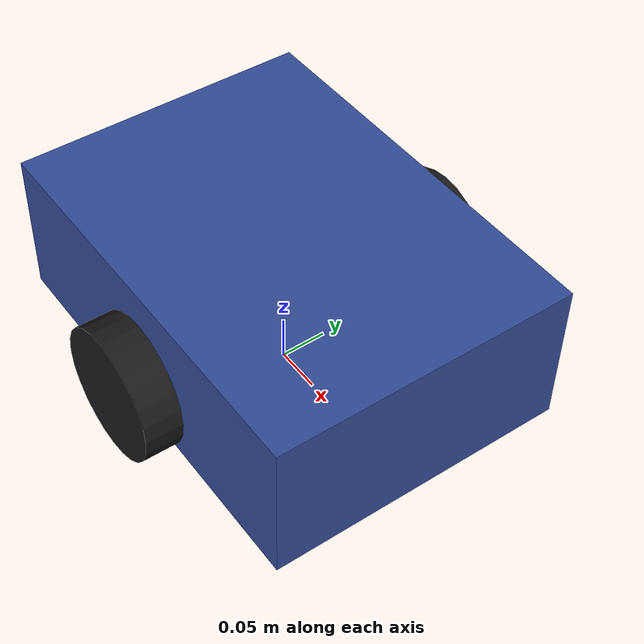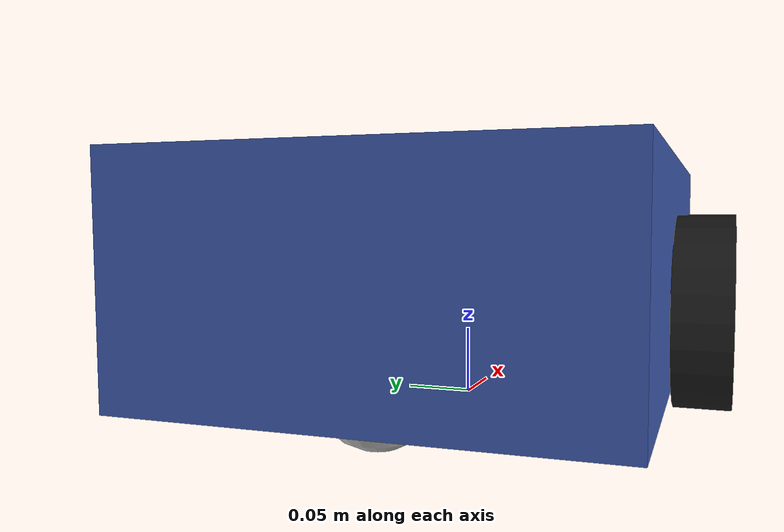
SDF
<?xml version="1.0" ?>
<!--
  Differential drive, odometry, TF, and a planar lidar: the four things Nav2
  needs and nothing else.
-->
<sdf version="1.10">
  <model name="kern_bot">
    <pose>0 0 0.1 0 0 0</pose>

    <link name="base_link">
      <inertial>
        <mass>8.0</mass>
        <inertia><ixx>0.12</ixx><iyy>0.12</iyy><izz>0.2</izz><ixy>0</ixy><ixz>0</ixz><iyz>0</iyz></inertia>
      </inertial>
      <collision name="collision">
        <geometry><box><size>0.44 0.32 0.16</size></box></geometry>
      </collision>
      <visual name="visual">
        <geometry><box><size>0.44 0.32 0.16</size></box></geometry>
        <material><ambient>0.2 0.3 0.6 1</ambient><diffuse>0.2 0.3 0.6 1</diffuse></material>
      </visual>

      <sensor name="lidar" type="gpu_lidar">
        <pose>0.16 0 0.12 0 0 0</pose>
        <topic>scan</topic>
        <update_rate>10</update_rate>
        <always_on>true</always_on>
        <visualize>true</visualize>
        <lidar>
          <scan>
            <horizontal>
              <samples>360</samples>
              <resolution>1</resolution>
              <min_angle>-3.14159</min_angle>
              <max_angle>3.14159</max_angle>
            </horizontal>
          </scan>
          <range><min>0.12</min><max>12.0</max><resolution>0.01</resolution></range>
        </lidar>
      </sensor>
    </link>

    <link name="wheel_left">
      <pose>0 0.18 -0.03 -1.5707 0 0</pose>
      <inertial>
        <mass>0.6</mass>
        <inertia><ixx>0.002</ixx><iyy>0.002</iyy><izz>0.003</izz><ixy>0</ixy><ixz>0</ixz><iyz>0</iyz></inertia>
      </inertial>
      <collision name="collision">
        <geometry><cylinder><radius>0.07</radius><length>0.04</length></cylinder></geometry>
        <surface><friction><ode><mu>1.2</mu><mu2>1.2</mu2></ode></friction></surface>
      </collision>
      <visual name="visual">
        <geometry><cylinder><radius>0.07</radius><length>0.04</length></cylinder></geometry>
        <material><ambient>0.1 0.1 0.1 1</ambient><diffuse>0.1 0.1 0.1 1</diffuse></material>
      </visual>
    </link>

    <link name="wheel_right">
      <pose>0 -0.18 -0.03 -1.5707 0 0</pose>
      <inertial>
        <mass>0.6</mass>
        <inertia><ixx>0.002</ixx><iyy>0.002</iyy><izz>0.003</izz><ixy>0</ixy><ixz>0</ixz><iyz>0</iyz></inertia>
      </inertial>
      <collision name="collision">
        <geometry><cylinder><radius>0.07</radius><length>0.04</length></cylinder></geometry>
        <surface><friction><ode><mu>1.2</mu><mu2>1.2</mu2></ode></friction></surface>
      </collision>
      <visual name="visual">
        <geometry><cylinder><radius>0.07</radius><length>0.04</length></cylinder></geometry>
        <material><ambient>0.1 0.1 0.1 1</ambient><diffuse>0.1 0.1 0.1 1</diffuse></material>
      </visual>
    </link>

    <link name="caster">
      <pose>-0.17 0 -0.06 0 0 0</pose>
      <inertial>
        <mass>0.2</mass>
        <inertia><ixx>0.0002</ixx><iyy>0.0002</iyy><izz>0.0002</izz><ixy>0</ixy><ixz>0</ixz><iyz>0</iyz></inertia>
      </inertial>
      <collision name="collision">
        <geometry><sphere><radius>0.04</radius></sphere></geometry>
        <surface><friction><ode><mu>0.05</mu><mu2>0.05</mu2></ode></friction></surface>
      </collision>
      <visual name="visual">
        <geometry><sphere><radius>0.04</radius></sphere></geometry>
      </visual>
    </link>

    <joint name="wheel_left_joint" type="revolute">
      <parent>base_link</parent>
      <child>wheel_left</child>
      <axis><xyz>0 0 1</xyz><limit><lower>-1e16</lower><upper>1e16</upper></limit></axis>
    </joint>
    <joint name="wheel_right_joint" type="revolute">
      <parent>base_link</parent>
      <child>wheel_right</child>
      <axis><xyz>0 0 1</xyz><limit><lower>-1e16</lower><upper>1e16</upper></limit></axis>
    </joint>
    <joint name="caster_joint" type="ball">
      <parent>base_link</parent>
      <child>caster</child>
    </joint>

    <plugin filename="gz-sim-diff-drive-system" name="gz::sim::systems::DiffDrive">
      <left_joint>wheel_left_joint</left_joint>
      <right_joint>wheel_right_joint</right_joint>
      <wheel_separation>0.36</wheel_separation>
      <wheel_radius>0.07</wheel_radius>
      <topic>cmd_vel</topic>
      <odom_topic>odom</odom_topic>
      <frame_id>odom</frame_id>
      <child_frame_id>base_link</child_frame_id>
      <odom_publish_frequency>30</odom_publish_frequency>
      <tf_topic>/tf</tf_topic>
      <max_linear_acceleration>1.0</max_linear_acceleration>
      <min_linear_acceleration>-1.0</min_linear_acceleration>
    </plugin>

    <plugin filename="gz-sim-joint-state-publisher-system"
            name="gz::sim::systems::JointStatePublisher">
      <topic>joint_states</topic>
    </plugin>
  </model>
</sdf>
